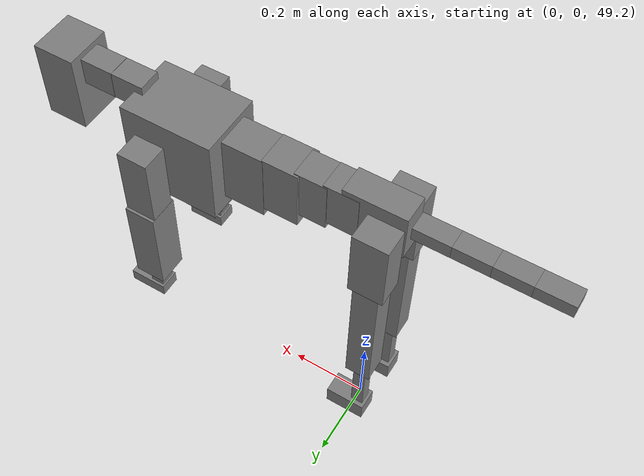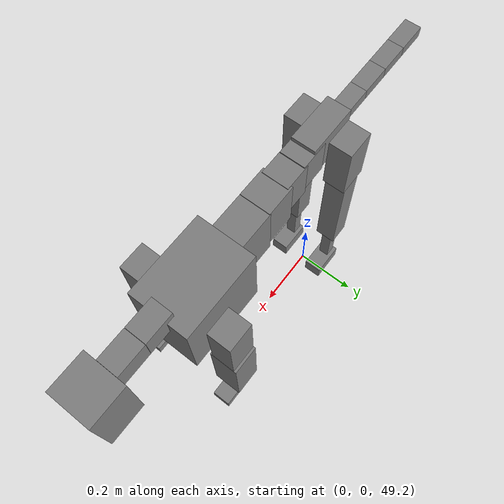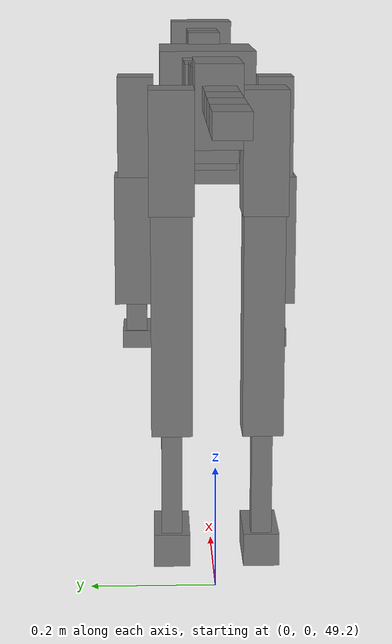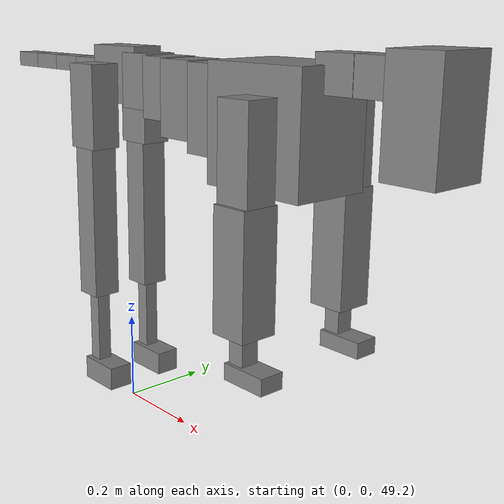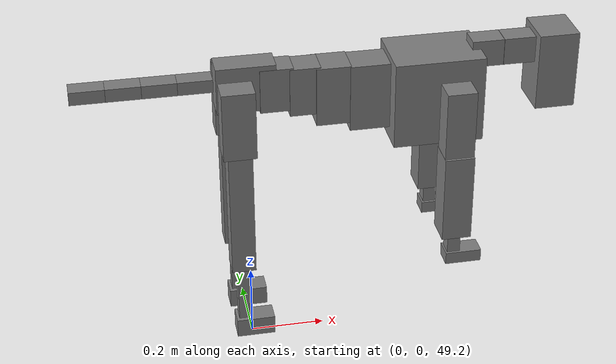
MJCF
<mujoco model="dog">

    <default>
        <joint armature="0.02" stiffness="1" damping="0.2" limited="true"/>
        <geom condim="3" friction="1 0.05 0.05" margin="0.01"/>
        <motor ctrllimited="true" ctrlrange="-1.0 1.0" forcelimited="true" gear="50"/>
    </default>

    <compiler inertiafromgeom="true" angle="radian"/>

    <option timestep="0.016" iterations="50" tolerance="1e-10" solver="Newton" jacobian="dense" cone="pyramidal"/>

    <size nconmax="20000" njmax="60000" nstack="5000000"/>
    <visual>
        <map force="0.1" zfar="30"/>
        <rgba haze="0.15 0.25 0.35 1"/>
        <quality shadowsize="2048"/>
        <global offwidth="800" offheight="800"/>
    </visual>

    <asset>
        <texture type="skybox" builtin="gradient" rgb1="0.3 0.5 0.7" rgb2="0 0 0" width="512" height="512"/>
        <texture name="texplane" type="2d" builtin="checker" rgb1=".2 .3 .4" rgb2=".1 0.15 0.2" width="512" height="512"
                 mark="cross" markrgb=".8 .8 .8"/>
        <texture name="texgeom" type="cube" builtin="flat" mark="cross" width="127" height="1278" rgb1="0.8 0.6 0.4"
                 rgb2="0.8 0.6 0.4" markrgb="1 1 1" random="0.01"/>

        <material name="matplane" reflectance="0.3" texture="texplane" texrepeat="1 1" texuniform="true"/>
        <material name="matgeom" texture="texgeom" texuniform="true" rgba="0.8 0.6 .4 1"/>
    </asset>

    <worldbody>
        <geom name="floor" pos="0 0 0" size="0 0 .25" type="plane" material="matplane" condim="3"/>

        <light directional="false" diffuse=".2 .2 .2" specular="0 0 0" pos="0 0 5" dir="0 0 -1" castshadow="false"/>
        <light mode="targetbodycom" target="torso" directional="false" diffuse=".8 .8 .8" specular="0.3 0.3 0.3"
               pos="0 0 4.0" dir="0 0 -1"/>

        <body name="root" pos="0 0 50">
            <freejoint name="root_1"/>
            <geom type="box" pos="0 0 -0.02" size="0.0774  0.0358  0.063" density="2030"/>

            <body name="spine1" pos="0.054 0 0">
                <joint name="spine1_y" axis="0 1 0" range="0 0.7" limited="true"/>
                <geom type="box" pos="0.02375 0 -0.03" size="0.04375  0.0375  0.05985" density="2030"/>

                <body name="spine2" pos="0.0612 0 0">
                    <joint name="spine2_y" axis="0 1 0" range="-0.15 0.15" limited="true"/>
                    <geom type="box" pos="0.03555  0  -0.04" size="0.04055  0.039  0.06615" density="2030"/>

                    <body name="spine3" pos="0.0730 0 0">
                        <joint name="spine3_y" axis="0 1 0" range="-0.15 0.15" limited="true"/>
                        <geom type="box" pos="0.03555  0  -0.057" size="0.04555  0.0445  0.081" density="2030"/>

                        <body name="spine4" pos="0.0780 0 0">
                            <joint name="spine4_y" axis="0 1 0" range="-0.15 0.15" limited="true"/>
                            <geom type="box" pos="0.05265  0  -0.07" size="0.05265  0.045  0.09135" density="2030"/>

                            <body name="torso" pos="0.1082 0 0">
                                <joint name="torso_y" axis="0 1 0" range="-0.15 0.15" limited="true"/>
                                <geom type="box" pos="0.11925  0  -0.085" size="0.11925  0.085  0.11745"
                                      density="2030"/>

                                <body name="neck1" pos="0.2160  0   0.0180">
                                    <joint name="neck1_y" axis="0 1 0" range="-1.2  -1" limited="true"/>
                                    <geom type="box" pos="0.0423  0  0" size="0.0423  0.03  0.036" density="2325"/>

                                    <body name="neck2" pos="0.0853  0  0">
                                        <joint name="neck2_y" axis="0 1 0" range="0.1  0" limited="true"/>
                                        <geom type="box" pos="0.0423  0  0" size="0.0423  0.03  0.036" density="2325"/>

                                        <body name="head" pos="0.0853  0  0">
                                            <joint name="head_y" axis="0 1 0" range="-0.3  -0.2" limited="true"/>
                                            <geom type="box" pos="0.0531  0  -0.055" size="0.0531  0.06  0.1044"
                                                  density="4030"/>

                                        </body>
                                    </body>
                                </body>

                                <body name="front_shoulder" pos="0.156  0   -0.0480">
                                    <joint name="front_shoulder_y" axis="0 1 0" range="-1 1.5" limited="true"/>
                                    <geom type="box" pos="0 0.13 -0.0799" size="0.0389  0.0333  0.1065" density="1158"/>
                                    <geom type="box" pos="0 -0.13 -0.0799" size="0.0389  0.0333  0.1065"
                                          density="1158"/>

                                    <body name="front_elbow" pos="0  0  -0.1597">
                                        <joint name="front_elbow_y" axis="0 1 0" range="-2 0" limited="true"/>
                                        <geom type="box" pos="0 0.13 -0.1210" size="0.0393  0.0402  0.1210"
                                              density="1081"/>
                                        <geom type="box" pos="0 -0.13 -0.1210" size="0.0393  0.0402  0.1210"
                                              density="1081"/>

                                        <body name="front_wrist" pos="0  0  -0.2420">
                                            <joint name="front_wrist_y" axis="0 1 0" range="-0.2 0" limited="true"/>
                                            <geom type="box" pos="0 0.13 -0.0355" size="0.0174  0.0194  0.0486"
                                                  density="1664"/>
                                            <geom type="box" pos="0 -0.13 -0.0355" size="0.0174  0.0194  0.0486"
                                                  density="1664"/>

                                            <body name="front_finger_end" pos="0  0  -0.0709">
                                                <joint name="front_finger_y" axis="0 1 0" range="-0.4 1"
                                                       limited="true"/>
                                                <geom type="box" pos="0.0264  0.13  -0.0017"
                                                      size="0.0485  0.0264  0.0167" density="1515"/>
                                                <geom type="box" pos="0.0264  -0.13  -0.0017"
                                                      size="0.0485  0.0264  0.0167" density="1515"/>

                                            </body>

                                        </body>
                                    </body>
                                </body>

                            </body>
                        </body>
                    </body>
                </body>
            </body>

            <body name="back_hip" pos="-0.03 0 -0.018">
                <joint name="back_hip_y" axis="0 1 0" range="-1.5 0.3" limited="true"/>
                <geom type="box" pos="0 0.07 -0.0708" size="0.0435  0.0341  0.0936" density="1154"/>
                <geom type="box" pos="0 -0.07 -0.0708" size="0.0435  0.0341  0.0936" density="1154"/>

                <body name="back_knee" pos="0  0  -0.1415">
                    <joint name="back_knee_y" axis="0 1 0" range="0 2.8" limited="true"/>
                    <geom type="box" pos="0 0.07 -0.1762" size="0.0320  0.0315  0.1918" density="1227"/>
                    <geom type="box" pos="0 -0.07 -0.1762" size="0.0320  0.0315  0.1918" density="1227"/>

                    <body name="back_ankle" pos="0  0  -0.3524">
                        <joint name="back_ankle_y" axis="0 1 0" range="-2.2 0" limited="true"/>
                        <geom type="box" pos="0 0.07 -0.0972" size="0.0161  0.0161  0.1084" density="1284"/>
                        <geom type="box" pos="0 -0.07 -0.0972" size="0.0161  0.0161  0.1084" density="1284"/>

                        <body name="back_toe_end" pos="0  0  -0.1944">
                            <joint name="back_toe_y" axis="0 1 0" range="-0.4 1" limited="true"/>
                            <geom type="box" pos="0.0281  0.07  -0.0112" size="0.0515  0.0281  0.0262" density="1515"/>
                            <geom type="box" pos="0.0281  -0.07  -0.0112" size="0.0515  0.0281  0.0262" density="1515"/>

                        </body>
                    </body>
                </body>
            </body>

            <body name="tail1" pos="-0.074 0 -0.006">
                <joint name="tail1_y" axis="0 1 0" range="-0.2 0.2" limited="true"/>
                <geom type="box" pos="-0.0536  0  0" size="0.045  0.025  0.0175" density="1587"/>

                <body name="tail2" pos="-0.09 0 0">
                    <joint name="tail2_y" axis="0 1 0" range="-0.2 0.2" limited="true"/>
                    <geom type="box" pos="-0.0536  0  0" size="0.045  0.025  0.0175" density="1587"/>

                    <body name="tail3" pos="-0.09 0 0">
                        <joint name="tail3_y" axis="0 1 0" range="-0.2 0.2" limited="true"/>
                        <geom type="box" pos="-0.0536  0  0" size="0.045  0.025  0.0175" density="1587"/>

                        <body name="tail4" pos="-0.09 0 0">
                            <joint name="tail4_y" axis="0 1 0" range="-0.2 0.2" limited="true"/>
                            <geom type="box" pos="-0.0536  0  0" size="0.045  0.025  0.0175" density="1587"/>

                        </body>
                    </body>
                </body>
            </body>
        </body>
    </worldbody>

    <actuator>
        <motor joint="spine1_y" forcerange="-150 150     "/>
        <motor joint="spine2_y" forcerange="-150 150     "/>
        <motor joint="spine3_y" forcerange="-150 150     "/>
        <motor joint="spine4_y" forcerange="-150 150     "/>
        <motor joint="torso_y" forcerange="-150 150     "/>
        <motor joint="neck1_y" forcerange="-100 100       "/>
        <motor joint="neck2_y" forcerange="-100 100       "/>
        <motor joint="head_y" forcerange="-150 150       "/>
        <motor joint="front_shoulder_y" forcerange="-142.36 179.39"/>
        <motor joint="front_elbow_y" forcerange="-194.21 198.03"/>
        <motor joint="front_wrist_y" forcerange="-103.16 51.77"/>
        <motor joint="front_finger_y" forcerange="-77.85 23.12"/>
        <motor joint="back_hip_y" forcerange="-387.62 267.24"/>
        <motor joint="back_knee_y" forcerange="-262.79 395.35"/>
        <motor joint="back_angle_y" forcerange="-67.03 91.00"/>
        <motor joint="back_toe_y" forcerange="-48.32 96.26"/>
        <motor joint="tail1_y" forcerange="-50 50     "/>
        <motor joint="tail2_y" forcerange="-50 50     "/>
        <motor joint="tail3_y" forcerange="-50 50     "/>
        <motor joint="tail4_y" forcerange="-50 50     "/>
    </actuator>
</mujoco>
